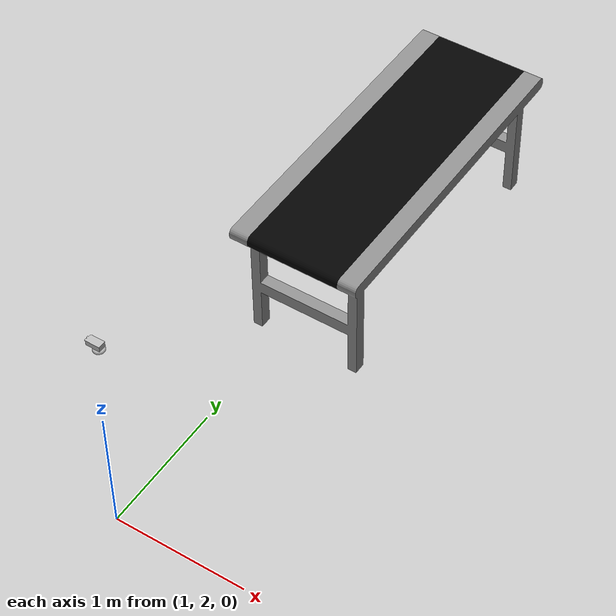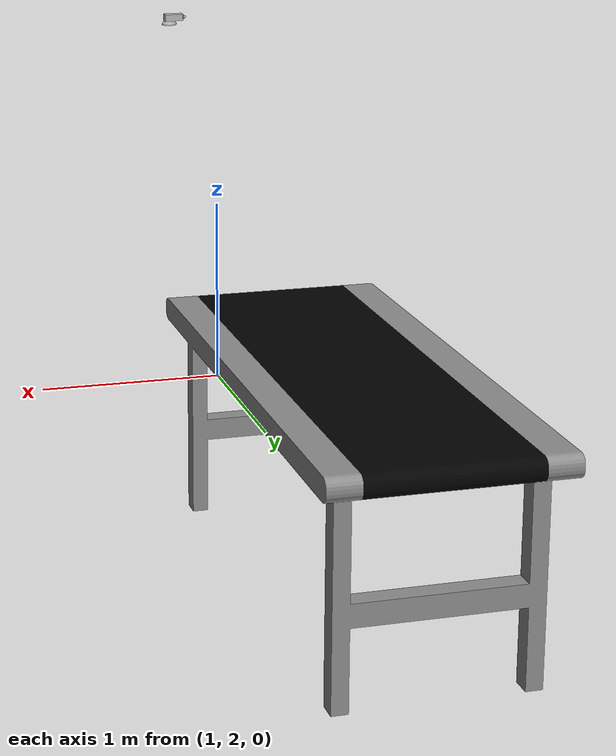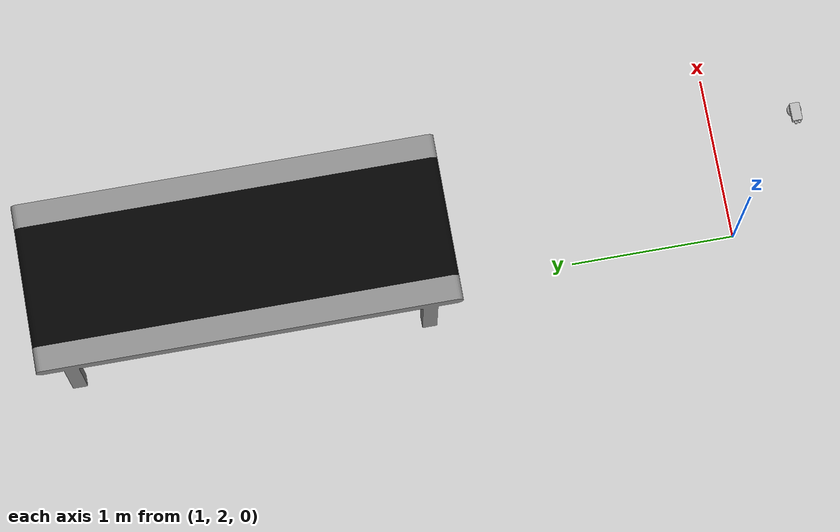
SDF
<?xml version="1.0" ?>
<sdf version="1.5">
  <world name="omtp_world">
    <!-- Set the initial camera pose to be looking at the workspace. -->
    <gui>
      <camera name="user_camera">
        <pose>-4.20 2.00 6.10 0 0.9 -0.27</pose>
      </camera>
    </gui>

    <physics type="ode">
      <real_time_factor>10</real_time_factor>      <!-- 'max_step_size' * 'real_time_update_rate' sets an upper bound of real_time_factor -->
      <max_step_size>0.001</max_step_size>      <!-- The maximum time step size that can be taken by a variable time-step solver, default: 0.001 -->
      <real_time_update_rate>2000</real_time_update_rate>      <!-- The frequency at which the simulation time steps are advanced, default: 1000 Hz -->
    </physics>

    <!-- Disable shadows. -->
    <scene>
      <shadows>false</shadows>
    </scene>

    <!-- A global light source -->
    <include>
      <uri>model://sun</uri>
    </include>

    <!-- A directed light source -->
    <light name="camera_spot_light" type='spot'>
      <pose>-10 10 10 0 -1 -0.8</pose>
      <diffuse>0.5 0.5 0.5 1</diffuse>
      <specular>0.1 0.1 0.1 1</specular>
      <direction>0 0 -1</direction>
      <attenuation>
        <range>20</range>
        <constant>0.5</constant>
        <linear>0.01</linear>
        <quadratic>0.001</quadratic>
      </attenuation>
      <cast_shadows>0</cast_shadows>
      <spot>
        <inner_angle>0.6</inner_angle>
        <outer_angle>1</outer_angle>
        <falloff>1</falloff>
      </spot>
    </light>

    <include>
      <uri>model://conveyor</uri>
      <pose>1.2 5 0 0 0 -1.571</pose>
    </include>

    <include>
      <uri>model://deletion_wall</uri>
      <pose>1.2 -5.1 1.425 0 0 1.5708</pose>
    </include>

    <!-- Lecture 6 Assignment1 Part 1 -->
    <!-- Include the two logical camera models here -->

    <include>
      <uri>model://logical_camera1</uri>
      <pose>1.2 1.8 2.0 0 1.57 0</pose>
    </include>

  </world>
</sdf>

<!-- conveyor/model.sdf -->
<sdf version='1.6'>
  <model name='conveyor'>
    <link name='link'>
      <self_collide>0</self_collide>
      <enable_wind>0</enable_wind>
      <kinematic>0</kinematic>
      <pose frame=''>0 0 0 0 -0 0</pose>
      <gravity>1</gravity>
      <inertial>
        <mass>1</mass>
        <pose frame=''>0 0 0 0 -0 0</pose>
        <inertia>
          <ixx>1</ixx>
          <ixy>0</ixy>
          <ixz>0</ixz>
          <iyy>1</iyy>
          <iyz>0</iyz>
          <izz>1</izz>
        </inertia>
      </inertial>
      <visual name='visual'>
        <pose frame=''>0 0 0.95 0 -0 0</pose>
        <geometry>
          <mesh>
            <scale>0.5 0.5 0.5</scale>
            <uri>model://conveyor/meshes/conveyor2.dae</uri>
          </mesh>
        </geometry>
      </visual>
      <collision name='collision_0'>
        <laser_retro>0</laser_retro>
        <max_contacts>10</max_contacts>
        <pose frame=''>0 0 0.95 0 -0 0</pose>
        <geometry>
          <box>
            <size>2.5 1 0.1</size>
          </box>
        </geometry>
        <surface>
          <friction>
            <ode>
              <mu>1</mu>
              <mu2>1</mu2>
              <fdir1>0 0 0</fdir1>
              <slip1>0</slip1>
              <slip2>0</slip2>
            </ode>
            <torsional>
              <coefficient>1</coefficient>
              <patch_radius>0</patch_radius>
              <surface_radius>0</surface_radius>
              <use_patch_radius>1</use_patch_radius>
              <ode>
                <slip>0</slip>
              </ode>
            </torsional>
          </friction>
          <bounce>
            <restitution_coefficient>0</restitution_coefficient>
            <threshold>1e+06</threshold>
          </bounce>
          <contact>
            <collide_without_contact>0</collide_without_contact>
            <collide_without_contact_bitmask>1</collide_without_contact_bitmask>
            <collide_bitmask>1</collide_bitmask>
            <ode>
              <soft_cfm>0</soft_cfm>
              <soft_erp>0.2</soft_erp>
              <kp>1e+13</kp>
              <kd>1</kd>
              <max_vel>0.01</max_vel>
              <min_depth>0</min_depth>
            </ode>
            <bullet>
              <split_impulse>1</split_impulse>
              <split_impulse_penetration_threshold>-0.01</split_impulse_penetration_threshold>
              <soft_cfm>0</soft_cfm>
              <soft_erp>0.2</soft_erp>
              <kp>1e+13</kp>
              <kd>1</kd>
            </bullet>
          </contact>
        </surface>
      </collision>
    </link>
    <static>1</static>
    <allow_auto_disable>1</allow_auto_disable>
  </model>
</sdf>

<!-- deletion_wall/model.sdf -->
<sdf version="1.6">
  <model name="deletion_wall">

    <static>true</static>
    <link name="sensing_link">
      <gravity>false</gravity>
      <sensor name="object_disposal_contact" type="contact">
        <update_rate>10</update_rate>
        <contact>
           <collision>collision</collision>
        </contact>
      </sensor>
      <collision name="collision">
        <max_contacts>10</max_contacts>
        <geometry>
          <box>
            <size>0.1 1 1</size>
          </box>
        </geometry>
      </collision>
      <visual name="visual">
        <geometry>
          <box>
            <size>0.1 1 1</size>
          </box>
        </geometry>
        <cast_shadows>0</cast_shadows>

        <transparency>100</transparency>
      </visual>
    </link>

    <plugin name="object_disposal_plugin" filename="libObjectDisposalPlugin.so">
      <contact_sensor_name>object_disposal_contact</contact_sensor_name>
      <contact_side_normal>1 0 0</contact_side_normal>
      <disposal_pose>30 30 0 0 0 0</disposal_pose>
      <update_rate>5</update_rate>
    </plugin>

  </model>
</sdf>

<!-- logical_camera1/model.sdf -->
<sdf version="1.6">
  <model name="logical_camera_1">
    <plugin name="ros_logical_camera_1" filename="libROSLogicalCameraPlugin.so">
      <robotNamespace>omtp</robotNamespace>
    </plugin>
    <link name="logical_camera_1">
      <gravity>false</gravity>
      <inertial>
        <mass>0.1</mass>
        <inertia>
          <ixx>0.000166667</ixx>
          <iyy>0.000166667</iyy>
          <izz>0.000166667</izz>
        </inertia>
      </inertial>

      <collision name="collision">
        <pose>0 0.02 0 0 0 -1.5708</pose>
        <geometry>
          <mesh>
            <uri>model://logical_camera1/meshes/camera.dae</uri>
          </mesh>
        </geometry>
      </collision>

      <visual name="visual">
        <pose>0 0.02 0 0 0 -1.5708</pose>
        <geometry>
          <mesh>
            <uri>model://logical_camera1/meshes/camera.dae</uri>
          </mesh>
        </geometry>
      </visual>

      <sensor name="logical_camera_1" type="logical_camera">

        <logical_camera>
          <near>0.2</near>
          <far>1.0</far>
          <horizontal_fov>1.1</horizontal_fov>
          <aspect_ratio>1.5</aspect_ratio>
        </logical_camera>

        <visualize>true</visualize>
        <always_on>true</always_on>
        <update_rate>10</update_rate>
        <topic>logical_camera_1</topic>
      </sensor>
    </link>
  </model>
</sdf>
